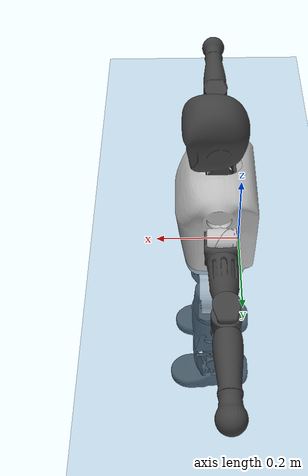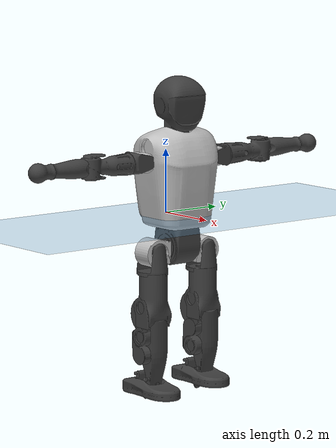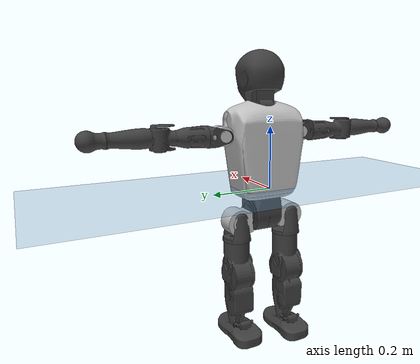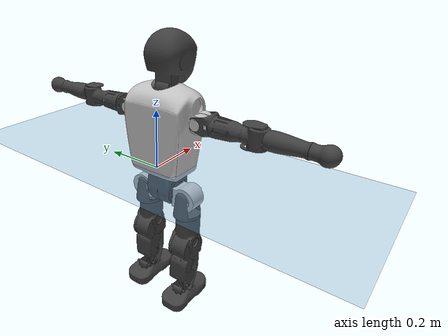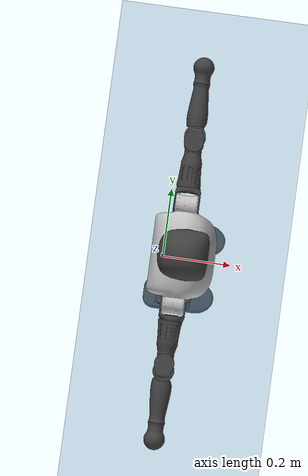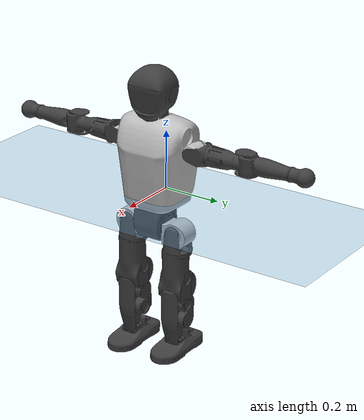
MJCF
<mujoco model="T1">
  <compiler angle="radian" assetdir="assets" balanceinertia="true" inertiafromgeom="false"/>

  <option timestep="0.005" density="1.2" viscosity="2e-05"/>

  <size nkey="1"/>

  <visual>
    <quality shadowsize="8192"/>
    <map shadowclip="0.5"/>
  </visual>

  <default>
    <default class="/">
      <joint armature="0.01" damping="0.01" frictionloss="0.1"/>
      <geom contype="0" conaffinity="0" group="1" solref="-1000 -80"/>
      <site size="0.01 0.005 0.005" group="5"/>
      <general forcelimited="true" biastype="affine" gainprm="25" biasprm="0 -25 -0.6"/>
      <default class="t1">
        <geom rgba="0.25 0.25 0.25 1"/>
        <default class="visual">
          <geom type="mesh" group="2"/>
        </default>
        <default class="collision">
          <geom group="3"/>
        </default>
        <default class="foot">
          <geom size="0.1115 0.05 0.015" type="box" condim="6" group="4" priority="1" solimp="0.015 1 0.015"/>
        </default>
        <default class="reward_collision_sphere">
          <geom group="5" rgba="1 0 0 1"/>
        </default>
      </default>
    </default>
  </default>

  <asset>
    <texture type="skybox" colorspace="auto" name="//unnamed_texture_0" builtin="gradient" rgb1="0.95 0.95 0.95" rgb2="0.95 0.95 0.95" width="100" height="600"/>
    <texture type="2d" colorspace="auto" name="texplane" builtin="checker" rgb1="0.345 0.575 0.748" rgb2="0.345 0.575 0.748" markrgb="1 1 1" width="512" height="512"/>
    <material name="MatPlane" class="/" texture="texplane" texuniform="true" texrepeat="2 2" specular="0.9"/>
    <mesh name="Trunk" class="/" file="Trunk.stl"/>
    <mesh name="H1" class="/" file="H1.stl"/>
    <mesh name="H2" class="/" file="H2.stl"/>
    <mesh name="AL1" class="/" file="AL1.stl"/>
    <mesh name="AL2" class="/" file="AL2.stl"/>
    <mesh name="AL3" class="/" file="AL3.stl"/>
    <mesh name="left_hand_link" class="/" file="left_hand_link.stl"/>
    <mesh name="AR1" class="/" file="AR1.stl"/>
    <mesh name="AR2" class="/" file="AR2.stl"/>
    <mesh name="AR3" class="/" file="AR3.stl"/>
    <mesh name="right_hand_link" class="/" file="right_hand_link.stl"/>
    <mesh name="Waist" class="/" file="Waist.stl"/>
    <mesh name="Hip_Pitch_Left" class="/" file="Hip_Pitch_Left.stl"/>
    <mesh name="Hip_Roll_Left" class="/" file="Hip_Roll_Left.stl"/>
    <mesh name="Hip_Yaw_Left" class="/" file="Hip_Yaw_Left.stl"/>
    <mesh name="Shank_Left" class="/" file="Shank_Left.stl"/>
    <mesh name="Ankle_Cross_Left" class="/" file="Ankle_Cross_Left.stl"/>
    <mesh name="left_foot_link" class="/" file="left_foot_link.stl"/>
    <mesh name="Hip_Pitch_Right" class="/" file="Hip_Pitch_Right.stl"/>
    <mesh name="Hip_Roll_Right" class="/" file="Hip_Roll_Right.stl"/>
    <mesh name="Hip_Yaw_Right" class="/" file="Hip_Yaw_Right.stl"/>
    <mesh name="Shank_Right" class="/" file="Shank_Right.stl"/>
    <mesh name="Ankle_Cross_Right" class="/" file="Ankle_Cross_Right.stl"/>
    <mesh name="right_foot_link" class="/" file="right_foot_link.stl"/>
  </asset>

  <worldbody>
    <geom name="floor" class="/" size="100 100 0.125" type="plane" group="0" material="MatPlane"/>
    <light name="toplight_shadow" class="/" pos="0 0 5" dir="0.0990148 0.0990148 -0.990148" type="directional" ambient="0.04 0.04 0.04" diffuse="0.55 0.55 0.55" specular="0.12 0.12 0.12"/>
    <light name="toplight_fill" class="/" pos="0 0 5" dir="0.0990148 0.0990148 -0.990148" type="directional" castshadow="false" ambient="0.04 0.04 0.04" diffuse="0.3 0.3 0.3" specular="0.08 0.08 0.08"/>
    <body name="trunk" childclass="t1" pos="-0.0020868 0.00208376 -0.000676852" quat="0.999999 -0.000383458 0.00105569 0.000499263">
      <inertial pos="0.0497217 0.00188233 0.0872681" quat="0.999929 0.00307637 -0.0113395 -0.00206386" mass="7.47979" diaginertia="0.0523764 0.0384269 0.0175445"/>
      <joint name="//unnamed_joint_0" type="free" armature="0" damping="0" frictionloss="0"/>
      <geom name="//unnamed_geom_1" class="visual" rgba="0.76 0.76 0.76 1" mesh="Trunk"/>
      <geom name="//unnamed_geom_2" class="collision" size="0.0647104 0.0862806 0.129421" pos="0.0539966 0 0.097123" type="box"/>
      <geom name="//unnamed_geom_3" class="reward_collision_sphere" size="0.0992227" pos="0.0539966 0 0.0809359"/>
      <geom name="//unnamed_geom_4" class="reward_collision_sphere" size="0.0129421" pos="0.0539966 0.0747248 0"/>
      <geom name="//unnamed_geom_5" class="reward_collision_sphere" size="0.0129421" pos="0.0539966 -0.0747248 0"/>
      <geom name="//unnamed_geom_6" class="reward_collision_sphere" size="0.0129421" pos="0.0539966 0.0940654 0.145685"/>
      <geom name="//unnamed_geom_7" class="reward_collision_sphere" size="0.0129421" pos="0.0539966 -0.0940654 0.145685"/>
      <site name="imu" pos="-0.00338905 -0.012759 0.0128624" size="0.00862806"/>
      <camera name="track" pos="0 -1.75823 0" quat="0.707107 0.707107 0 0" mode="trackcom"/>
      <camera name="ego_camera" pos="0.109793 0 0.339931" quat="-0.5 -0.5 0.5 0.5"/>
      <body name="H1" pos="0.0535917 -0.00255815 0.196962" quat="1 2.5152e-05 -1.89728e-05 1.93997e-05">
        <inertial pos="0.000438855 0.000355666 0.0457089" quat="0.756484 -0.00312176 0.0207183 0.653677" mass="0.272856" diaginertia="0.00014431 0.000115864 5.12644e-05"/>
        <joint name="AAHead_yaw" pos="0 0 0" axis="-0.00645273 -0.010047 0.999929" range="-1.60556 1.59403" armature="0.00917385" damping="0" frictionloss="0.065302"/>
        <geom name="//unnamed_geom_8" class="visual" mesh="H1"/>
        <body name="H2" pos="-0.00265519 -9.88861e-05 0.0501895" quat="1 -0.00034009 -0.000350291 -7.27203e-05">
          <inertial pos="0.00820873 0.00051149 0.0799109" quat="0.987599 0.115552 -0.0748155 -0.0754903" mass="0.406713" diaginertia="0.00120902 0.00106209 0.000588964"/>
          <joint name="Head_pitch" pos="0 0 0" axis="0.00699136 -0.999934 -0.00912816" range="-1.24713 0.380487" armature="0.0101813" damping="0.00837564" frictionloss="0.0751779"/>
          <geom name="//unnamed_geom_9" class="visual" mesh="H2"/>
          <geom name="//unnamed_geom_10" class="collision" size="0.0690245" pos="0.00899943 0 0.0890295"/>
          <geom name="//unnamed_geom_11" class="reward_collision_sphere" size="0.0776525" pos="0.0179989 0 0.0809359"/>
        </body>
      </body>
      <body name="AL1" pos="0.0524275 0.0977412 0.174686" quat="1 0.00028953 0.000427711 0.000426729">
        <inertial pos="-0.00206979 0.0399064 0.00145269" quat="0.490248 0.495939 -0.501713 0.511845" mass="0.329841" diaginertia="0.000802617 0.000690216 9.92328e-05"/>
        <joint name="Left_Shoulder_Pitch" pos="0 0 0" axis="-0.00482207 0.999986 0.00219619" range="-3.32505 1.2595" armature="0.00877554" damping="0.0036773" frictionloss="0.0762277"/>
        <geom name="//unnamed_geom_12" class="visual" rgba="0.76 0.76 0.76 1" mesh="AL1"/>
        <body name="AL2" pos="0.000375884 0.042047 -0.00153384" quat="1 0.00014049 0.000262176 0.000182211">
          <inertial pos="0.00374191 0.0323547 -0.000627751" quat="0.488457 0.513571 -0.487893 0.509525" mass="0.0997956" diaginertia="0.000231549 0.00018124 5.77582e-05"/>
          <joint name="Left_Shoulder_Roll" pos="0 0 0" axis="-0.999945 0.00861848 0.00598137" range="-1.61139 1.75211" armature="0.00872203" damping="0.00312932" frictionloss="0.0783625"/>
          <geom name="//unnamed_geom_13" class="visual" mesh="AL2"/>
          <body name="AL3" pos="-0.00142801 0.0544659 0.00130048" quat="1 3.72845e-05 -0.000357979 -0.000190219">
            <inertial pos="0.0035243 0.0760579 0.000423259" quat="0.700695 0.713409 -0.00643957 -0.00574171" mass="0.650572" diaginertia="0.00771438 0.00696198 0.000218464"/>
            <joint name="Left_Elbow_Pitch" pos="0 0 0" axis="-0.00219623 -0.999988 -0.00444043" range="-2.25793 2.26828" armature="0.00846891" damping="0.00874046" frictionloss="0.0757145"/>
            <geom name="//unnamed_geom_14" class="visual" mesh="AL3"/>
            <geom name="//unnamed_geom_15" class="collision" size="0.0258842 0.0647104" pos="0 0.0439558 0" quat="0.707105 0.707108 0 0" type="cylinder"/>
            <geom name="//unnamed_geom_16" class="reward_collision_sphere" size="0.031061"/>
            <body name="left_hand_link" pos="-0.000905397 0.128843 0.00476112" quat="0.999999 -5.75773e-06 -0.00133635 -0.000313982">
              <inertial pos="0.000334452 0.0964341 0.000459082" quat="0.704197 0.710004 0.00109533 0.000430484" mass="0.210448" diaginertia="0.00489632 0.00436452 7.96384e-05"/>
              <joint name="Left_Elbow_Yaw" pos="0 0 0" axis="0.00873034 -0.00965648 0.999915" range="-2.48971 -0.0422495" armature="0.00783467" damping="0.0195819" frictionloss="0.0891939"/>
              <geom name="//unnamed_geom_17" class="visual" mesh="left_hand_link"/>
              <geom name="//unnamed_geom_18" class="collision" size="0.0258842 0.0754955" pos="0 0.114285 0" quat="0.707105 0.707108 0 0" type="cylinder"/>
              <geom name="//unnamed_geom_19" class="reward_collision_sphere" size="0.0431403"/>
              <geom name="//unnamed_geom_20" class="reward_collision_sphere" size="0.0301982" pos="0 0.0967027 0"/>
              <geom name="//unnamed_geom_21" class="reward_collision_sphere" size="0.0301982" pos="0 0.18901 0"/>
            </body>
          </body>
        </body>
      </body>
      <body name="AR1" pos="0.0525638 -0.0893549 0.17684" quat="0.999999 0.000944092 -0.000779832 0.000144534">
        <inertial pos="-0.0010468 -0.0376422 -0.00359606" quat="0.497061 0.49511 -0.503581 0.504186" mass="0.335679" diaginertia="0.000790572 0.00069967 9.99512e-05"/>
        <joint name="Right_Shoulder_Pitch" pos="0 0 0" axis="-0.00101401 -0.999868 -0.0161926" range="-1.24686 3.2876" armature="0.00962304" damping="0.0105856" frictionloss="0.081666"/>
        <geom name="//unnamed_geom_22" class="visual" rgba="0.76 0.76 0.76 1" mesh="AR1"/>
        <body name="AR2" pos="-1.50536e-05 -0.0419589 0.0016738" quat="1 2.85189e-06 0.000337751 1.93629e-05">
          <inertial pos="0.0027234 -0.0339632 -0.000387793" quat="0.508439 0.485716 -0.516558 0.488608" mass="0.0993428" diaginertia="0.000219553 0.000168786 6.10452e-05"/>
          <joint name="Right_Shoulder_Roll" pos="0 0 0" axis="-0.999953 0.00934212 0.00276956" range="-1.75161 1.56421" armature="0.00987239" damping="0.00838083" frictionloss="0.0770166"/>
          <geom name="//unnamed_geom_23" class="visual" mesh="AR2"/>
          <body name="AR3" pos="-0.00197324 -0.0510854 -0.00278913" quat="1 9.2351e-06 0.000695496 -0.000177524">
            <inertial pos="-0.00475366 -0.0738542 -0.00229347" quat="0.709045 0.705153 -0.00170163 -0.00343618" mass="0.655859" diaginertia="0.00792542 0.00676202 0.000210211"/>
            <joint name="Right_Elbow_Pitch" pos="0 0 0" axis="-0.00017648 1 -0.000936132" range="-2.32171 2.28108" armature="0.00826054" damping="0.00584189" frictionloss="0.0653797"/>
            <geom name="//unnamed_geom_24" class="visual" mesh="AR3"/>
            <geom name="//unnamed_geom_25" class="collision" size="0.0258842 0.0647104" pos="0 -0.0439558 0" quat="0.707105 0.707108 0 0" type="cylinder"/>
            <geom name="//unnamed_geom_26" class="reward_collision_sphere" size="0.031061"/>
            <body name="right_hand_link" pos="-0.00062392 -0.125763 0.0028663" quat="1 -0.000116391 -0.000195266 0.000240623">
              <inertial pos="-0.00040071 -0.0935768 -0.00146059" quat="0.705961 0.708251 0.000268881 0.000437605" mass="0.20306" diaginertia="0.00456973 0.00404555 6.95345e-05"/>
              <joint name="Right_Elbow_Yaw" pos="0 0 0" axis="0.00108854 0.0212297 0.999774" range="-0.0505123 2.44435" armature="0.00781754" damping="0.00615703" frictionloss="0.0903808"/>
              <geom name="//unnamed_geom_27" class="visual" mesh="right_hand_link"/>
              <geom name="//unnamed_geom_28" class="collision" size="0.0258842 0.0754955" pos="0 -0.114285 0" quat="0.707105 0.707108 0 0" type="cylinder"/>
              <geom name="//unnamed_geom_29" class="reward_collision_sphere" size="0.0431403"/>
              <geom name="//unnamed_geom_30" class="reward_collision_sphere" size="0.0301982" pos="0 -0.0967027 0"/>
              <geom name="//unnamed_geom_31" class="reward_collision_sphere" size="0.0301982" pos="0 -0.18901 0"/>
            </body>
          </body>
        </body>
      </body>
      <body name="Waist" pos="0.0611475 -0.00285329 -0.0933366" quat="0.999998 -5.24252e-05 0.00190668 0.000139366">
        <inertial pos="0.00530236 -0.0008118 0.00626266" quat="0.982017 0.00997672 -0.188212 -0.0109448" mass="1.66024" diaginertia="0.00304126 0.00261062 0.00154356"/>
        <joint name="Waist" pos="0 0 0" axis="0.00232188 0.000731202 0.999997" range="-1.56487 1.62365" armature="0.00889935" damping="0.00855097" frictionloss="0.0827221"/>
        <geom name="//unnamed_geom_32" class="visual" mesh="Waist"/>
        <body name="Hip_Pitch_Left" pos="0.00321251 0.0937418 -0.00211172" quat="0.999999 0.000802687 0.00107743 0.000273564">
          <inertial pos="-0.00234708 -0.00582246 -0.0152143" quat="0.977297 0.21175 0.00710416 -0.00132786" mass="0.673781" diaginertia="0.00111159 0.000763059 0.000425456"/>
          <joint name="Left_Hip_Pitch" pos="0 0 0" axis="0.00230983 0.999978 -0.00620033" range="-1.76388 1.51916" armature="0.00904182" damping="0.0136328" frictionloss="0.0890918"/>
          <geom name="//unnamed_geom_33" class="visual" rgba="0.76 0.76 0.76 1" mesh="Hip_Pitch_Left"/>
          <body name="Hip_Roll_Left" pos="0.00518435 -0.00211884 -0.00862363" quat="1 -5.60585e-08 -2.35947e-06 -2.21837e-06">
            <inertial pos="0.000103139 0.00422096 -0.0454659" quat="0.706032 -0.00683402 -0.00529029 0.708127" mass="0.251166" diaginertia="0.00106609 0.000839776 0.000169395"/>
            <joint name="Left_Hip_Roll" pos="0 0 0" axis="-0.999969 0.00226973 0.007522" range="-1.6183 0.225256" armature="0.00975608" damping="0.0306005" frictionloss="0.0822004"/>
            <geom name="//unnamed_geom_34" class="visual" mesh="Hip_Roll_Left"/>
            <geom name="//unnamed_geom_35" class="reward_collision_sphere" size="0.0474543"/>
            <body name="Hip_Yaw_Left" pos="0.00612704 -0.00193755 -0.0637987" quat="1 6.83291e-05 5.42335e-05 0.000362878">
              <inertial pos="-0.00392549 0.00160919 -0.0718648" quat="0.700838 -0.0379015 -0.0216662 0.711983" mass="1.42781" diaginertia="0.0152246 0.0139793 0.000937586"/>
              <joint name="Left_Hip_Yaw" pos="0 0 0" axis="-0.00249037 0.00193677 -0.999995" stiffness="0.010828" range="-0.919809 0.965195" armature="0.00886701" damping="0.00574034" frictionloss="0.0825197"/>
              <geom name="//unnamed_geom_36" class="visual" mesh="Hip_Yaw_Left"/>
              <geom name="//unnamed_geom_37" class="collision" size="0.0431403 0.0690245" type="cylinder"/>
              <body name="Shank_Left" pos="-0.00556518 -0.000182885 -0.0989722" quat="1 0.000394599 -0.000434387 6.37466e-05">
                <inertial pos="-0.00427853 -0.000145456 -0.0998879" quat="0.997457 -3.30859e-05 -0.0213613 0.067991" mass="1.15287" diaginertia="0.0211307 0.019672 0.00067634"/>
                <joint name="Left_Knee_Pitch" pos="0 0 0" axis="0.00332449 0.999971 0.00681818" range="-0.00785488 2.33355" armature="0.0085487" damping="0.00542441" frictionloss="0.0831679"/>
                <geom name="//unnamed_geom_38" class="visual" mesh="Shank_Left"/>
                <geom name="//unnamed_geom_39" class="collision" size="0.0431403 0.0647104" pos="0 0 -0.097123" type="cylinder"/>
                <geom name="//unnamed_geom_40" class="reward_collision_sphere" size="0.0560824"/>
                <body name="Ankle_Cross_Left" pos="-0.0029414 -0.00108918 -0.231744" quat="1 -0.000207659 0.000197983 0.000455978">
                  <inertial pos="0.00164216 0.00299509 -0.00554015" quat="0.443824 0.551135 0.551204 0.442092" mass="0.0475507" diaginertia="1.67662e-05 1.32965e-05 3.99721e-06"/>
                  <joint name="Left_Ankle_Pitch" pos="0 0 0" axis="-0.000196072 0.999998 0.00200474" stiffness="0.00392395" range="-0.87678 0.358589" armature="0.00677982" damping="0" frictionloss="0.0891529"/>
                  <geom name="//unnamed_geom_41" class="visual" mesh="Ankle_Cross_Left"/>
                  <body name="left_foot_link" pos="-0.00257304 0.000124735 -0.00990389" quat="0.999997 -0.000893667 -0.00224014 0.000548549">
                    <inertial pos="0.00066066 -0.000819779 -0.00962019" quat="0.0123115 0.623644 0.00592289 0.781589" mass="0.418219" diaginertia="0.00148656 0.00122393 0.000743577"/>
                    <joint name="Left_Ankle_Roll" pos="0 0 0" axis="-0.999741 -0.00897085 0.0209238" stiffness="0.000893455" range="-0.399048 0.443546" armature="0.00814363" damping="0.0122135" frictionloss="0.0750644"/>
                    <geom name="//unnamed_geom_42" class="visual" mesh="left_foot_link"/>
                    <geom name="left_foot" class="foot" size="0.100905 0.0494149 0.0114994" pos="0.00899943 0 -0.0121404"/>
                    <geom name="//unnamed_geom_44" class="reward_collision_sphere" size="0.0448659" pos="0.00899943 0 -0.0121404"/>
                    <geom name="//unnamed_geom_45" class="reward_collision_sphere" size="0.0258842" pos="0.0854946 -0.0202197 -0.0121404"/>
                    <geom name="//unnamed_geom_46" class="reward_collision_sphere" size="0.0258842" pos="-0.062996 -0.0202197 -0.0121404"/>
                    <site name="left_foot" class="foot" pos="0.00899943 0 -0.0121404" size="0.00862806"/>
                  </body>
                </body>
              </body>
            </body>
          </body>
        </body>
        <body name="Hip_Pitch_Right" pos="-0.0047219 -0.0941214 0.0047389" quat="1 -7.55309e-05 -0.000294601 -0.00032127">
          <inertial pos="0.00402844 0.00907504 -0.0165276" quat="0.973032 -0.230375 0.00409325 -0.0109617" mass="0.659541" diaginertia="0.00105106 0.000755527 0.00044375"/>
          <joint name="Right_Hip_Pitch" pos="0 0 0" axis="0.00278612 -0.999958 0.00871026" range="-1.62102 1.79311" armature="0.00773964" damping="0.0240331" frictionloss="0.0950681"/>
          <geom name="//unnamed_geom_47" class="visual" rgba="0.76 0.76 0.76 1" mesh="Hip_Pitch_Right"/>
          <body name="Hip_Roll_Right" pos="-0.000651992 0.000956567 -0.0115748" quat="1 0.000136708 0.000291092 0.000131322">
            <inertial pos="0.00138153 0.00202887 -0.0436499" quat="0.710625 -0.0106657 0.00111869 0.703489" mass="0.246422" diaginertia="0.000955434 0.000750576 0.0001731"/>
            <joint name="Right_Hip_Roll" pos="0 0 0" axis="-0.999991 0.0042321 0.00043846" range="-0.247681 1.57893" armature="0.00852083" damping="0.0196117" frictionloss="0.0855495"/>
            <geom name="//unnamed_geom_48" class="visual" mesh="Hip_Roll_Right"/>
            <geom name="//unnamed_geom_49" class="reward_collision_sphere" size="0.0474543"/>
            <body name="Hip_Yaw_Right" pos="0.00411927 -0.00136663 -0.0697056" quat="1 -0.000193978 8.08765e-05 -0.00019818">
              <inertial pos="-0.00760281 -0.00204357 -0.0717332" quat="0.714463 -0.0316752 -0.0337123 0.698142" mass="1.35397" diaginertia="0.0141494 0.012616 0.000833251"/>
              <joint name="Right_Hip_Yaw" pos="0 0 0" axis="0.000182578 0.000225595 -1" range="-0.992165 1.02409" armature="0.0095871" damping="0" frictionloss="0.0761746"/>
              <geom name="//unnamed_geom_50" class="visual" mesh="Hip_Yaw_Right"/>
              <geom name="//unnamed_geom_51" class="collision" size="0.0431403 0.0690245" type="cylinder"/>
              <body name="Shank_Right" pos="-0.0106129 -0.00102363 -0.108096" quat="0.999999 0.000111134 -0.000719351 0.000885384">
                <inertial pos="-0.00658306 0.00164721 -0.0982206" quat="0.999221 0.00281094 -0.0236928 -0.0314377" mass="1.11369" diaginertia="0.020084 0.0182687 0.000700977"/>
                <joint name="Right_Knee_Pitch" pos="0 0 0" axis="-0.00495099 -0.999977 0.00469016" range="-2.28231 -0.00768405" armature="0.007522" damping="0.0111137" frictionloss="0.077018"/>
                <geom name="//unnamed_geom_52" class="visual" mesh="Shank_Right"/>
                <geom name="//unnamed_geom_53" class="collision" size="0.0431403 0.0647104" pos="0 0 -0.097123" type="cylinder"/>
                <geom name="//unnamed_geom_54" class="reward_collision_sphere" size="0.0560824"/>
                <body name="Ankle_Cross_Right" pos="0.00204747 0.00194449 -0.229575" quat="1 -0.000144554 -0.000252362 6.87291e-05">
                  <inertial pos="-0.00355141 0.00156836 -0.00672753" quat="0.442756 0.550749 0.552124 0.442494" mass="0.0468343" diaginertia="1.6626e-05 1.34997e-05 3.82643e-06"/>
                  <joint name="Right_Ankle_Pitch" pos="0 0 0" axis="-0.00788636 -0.999929 -0.00894585" stiffness="0.00411311" range="-0.34215 0.88575" armature="0.0086606" damping="0.0136861" frictionloss="0.0825577"/>
                  <geom name="//unnamed_geom_55" class="visual" mesh="Ankle_Cross_Right"/>
                  <body name="right_foot_link" pos="-0.00137048 -0.00225098 -0.0198242" quat="1 1.35227e-05 -0.000325147 2.92953e-05">
                    <inertial pos="-0.000138158 -0.00189113 -0.00291838" quat="-0.00545643 0.623676 -0.00743284 0.781628" mass="0.457619" diaginertia="0.00173063 0.00131606 0.000845834"/>
                    <joint name="Right_Ankle_Roll" pos="0 0 0" axis="-0.999959 -0.00205393 -0.00886392" stiffness="0.0070423" range="-0.412349 0.372985" armature="0.0109187" damping="0.0287254" frictionloss="0.0846169"/>
                    <geom name="//unnamed_geom_56" class="visual" mesh="right_foot_link"/>
                    <geom name="right_foot" class="foot" size="0.0921563 0.0460957 0.0119918" pos="0.00899943 0 -0.0121404"/>
                    <geom name="//unnamed_geom_58" class="reward_collision_sphere" size="0.0345122"/>
                    <geom name="//unnamed_geom_59" class="reward_collision_sphere" size="0.0258842" pos="0.00899943 0 -0.0121404"/>
                    <geom name="//unnamed_geom_60" class="reward_collision_sphere" size="0.0258842" pos="0.0854946 0.0202197 -0.0121404"/>
                    <geom name="//unnamed_geom_61" class="reward_collision_sphere" size="0.0258842" pos="-0.062996 0.0202197 -0.0121404"/>
                    <site name="right_foot" class="foot" pos="0.00899943 0 -0.0121404" size="0.00862806"/>
                  </body>
                </body>
              </body>
            </body>
          </body>
        </body>
      </body>
    </body>
  </worldbody>

  <contact>
    <pair class="/" geom1="floor" geom2="left_foot" name="//unnamed_contact_0"/>
    <pair class="/" geom1="floor" geom2="right_foot" name="//unnamed_contact_1"/>
  </contact>

  <actuator>
    <general name="AAHead_yaw" class="/" joint="AAHead_yaw" forcerange="-6.23912 6.23912" gainprm="20.634" biasprm="0 -20.634 -0.52952"/>
    <general name="Head_pitch" class="/" joint="Head_pitch" forcerange="-6.03931 6.03931" gainprm="20.634" biasprm="0 -20.634 -0.52952"/>
    <general name="Left_Shoulder_Pitch" class="/" joint="Left_Shoulder_Pitch" forcerange="-18.3043 18.3043" gainprm="20.634" biasprm="0 -20.634 -0.52952"/>
    <general name="Left_Shoulder_Roll" class="/" joint="Left_Shoulder_Roll" forcerange="-16.8918 16.8918" gainprm="20.634" biasprm="0 -20.634 -0.52952"/>
    <general name="Left_Elbow_Pitch" class="/" joint="Left_Elbow_Pitch" forcerange="-15.609 15.609" gainprm="20.634" biasprm="0 -20.634 -0.52952"/>
    <general name="Left_Elbow_Yaw" class="/" joint="Left_Elbow_Yaw" forcerange="-16.0237 16.0237" gainprm="20.634" biasprm="0 -20.634 -0.52952"/>
    <general name="Right_Shoulder_Pitch" class="/" joint="Right_Shoulder_Pitch" forcerange="-14.2687 14.2687" gainprm="20.634" biasprm="0 -20.634 -0.52952"/>
    <general name="Right_Shoulder_Roll" class="/" joint="Right_Shoulder_Roll" forcerange="-15.2822 15.2822" gainprm="20.634" biasprm="0 -20.634 -0.52952"/>
    <general name="Right_Elbow_Pitch" class="/" joint="Right_Elbow_Pitch" forcerange="-17.0522 17.0522" gainprm="20.634" biasprm="0 -20.634 -0.52952"/>
    <general name="Right_Elbow_Yaw" class="/" joint="Right_Elbow_Yaw" forcerange="-13.8717 13.8717" gainprm="20.634" biasprm="0 -20.634 -0.52952"/>
    <general name="Waist" class="/" joint="Waist" forcerange="-27.504 27.504" gainprm="20.634" biasprm="0 -20.634 -0.52952"/>
    <general name="Left_Hip_Pitch" class="/" joint="Left_Hip_Pitch" forcerange="-41.6538 41.6538" gainprm="20.634" biasprm="0 -20.634 -0.52952"/>
    <general name="Left_Hip_Roll" class="/" joint="Left_Hip_Roll" forcerange="-28.0059 28.0059" gainprm="20.634" biasprm="0 -20.634 -0.52952"/>
    <general name="Left_Hip_Yaw" class="/" joint="Left_Hip_Yaw" forcerange="-25.079 25.079" gainprm="20.634" biasprm="0 -20.634 -0.52952"/>
    <general name="Left_Knee_Pitch" class="/" joint="Left_Knee_Pitch" forcerange="-52.6861 52.6861" gainprm="20.634" biasprm="0 -20.634 -0.52952"/>
    <general name="Left_Ankle_Pitch" class="/" joint="Left_Ankle_Pitch" forcerange="-17.1818 17.1818" gainprm="20.634" biasprm="0 -20.634 -0.52952"/>
    <general name="Left_Ankle_Roll" class="/" joint="Left_Ankle_Roll" forcerange="-14.1039 14.1039" gainprm="20.634" biasprm="0 -20.634 -0.52952"/>
    <general name="Right_Hip_Pitch" class="/" joint="Right_Hip_Pitch" forcerange="-35.2264 35.2264" gainprm="20.634" biasprm="0 -20.634 -0.52952"/>
    <general name="Right_Hip_Roll" class="/" joint="Right_Hip_Roll" forcerange="-21.587 21.587" gainprm="20.634" biasprm="0 -20.634 -0.52952"/>
    <general name="Right_Hip_Yaw" class="/" joint="Right_Hip_Yaw" forcerange="-26.7007 26.7007" gainprm="20.634" biasprm="0 -20.634 -0.52952"/>
    <general name="Right_Knee_Pitch" class="/" joint="Right_Knee_Pitch" forcerange="-53.9313 53.9313" gainprm="20.634" biasprm="0 -20.634 -0.52952"/>
    <general name="Right_Ankle_Pitch" class="/" joint="Right_Ankle_Pitch" forcerange="-19.9745 19.9745" gainprm="20.634" biasprm="0 -20.634 -0.52952"/>
    <general name="Right_Ankle_Roll" class="/" joint="Right_Ankle_Roll" forcerange="-12.3016 12.3016" gainprm="20.634" biasprm="0 -20.634 -0.52952"/>
  </actuator>

  <sensor>
    <gyro site="imu" name="imu_angular_velocity"/>
    <velocimeter site="imu" name="imu_linear_velocity"/>
    <framelinvel objtype="site" objname="left_foot" name="left_foot_global_linear_velocity"/>
    <framelinvel objtype="site" objname="right_foot" name="right_foot_global_linear_velocity"/>
  </sensor>

  <keyframe>
    <key name="home" qpos="0 0 0.6385 1 0 0 0 0 0 0 1.4 0 -0.4 0 -1.4 0 0.4 0 -0.4 0 0 0.8 -0.4 0 0.4 0 0 -0.8 0.4 0"/>
  </keyframe>
</mujoco>
